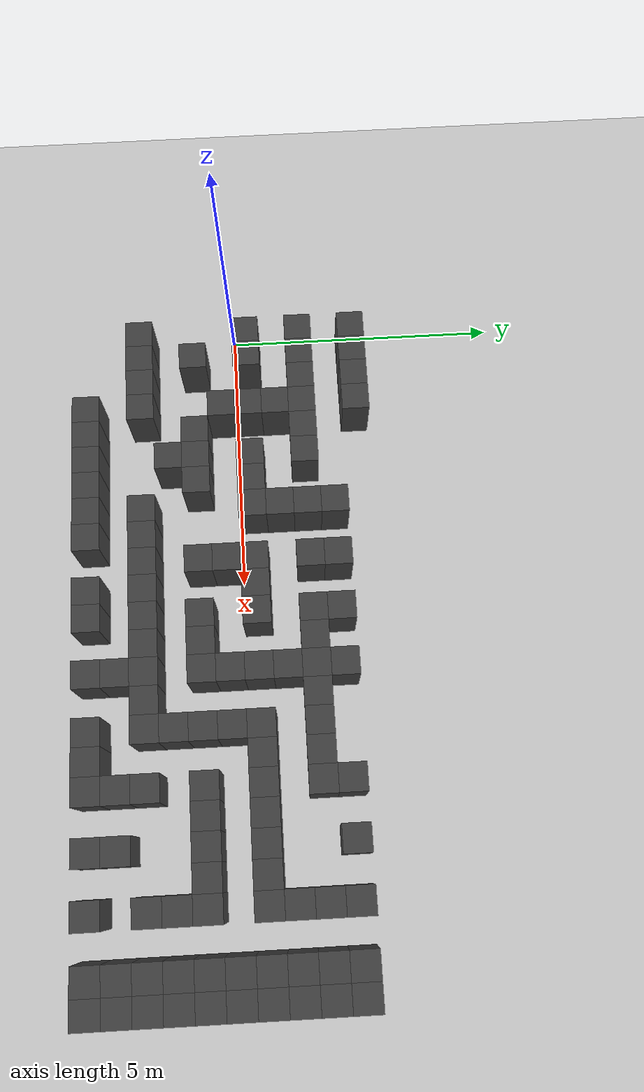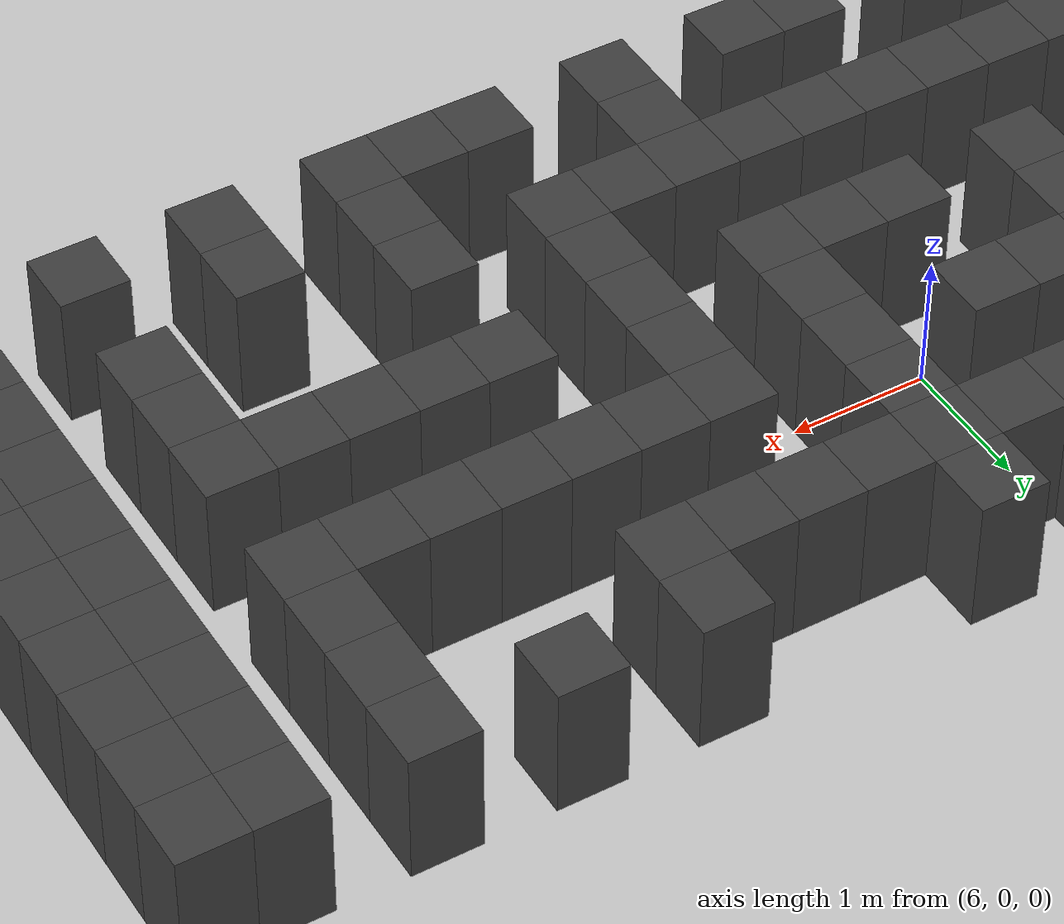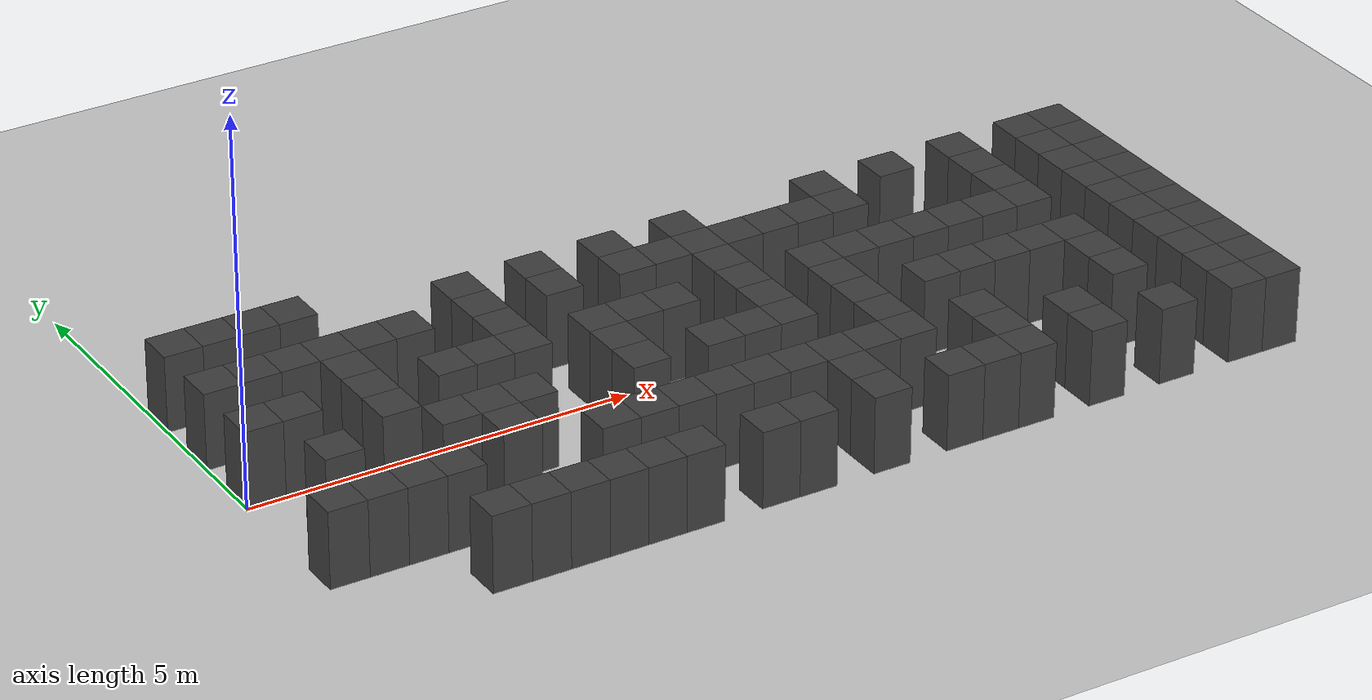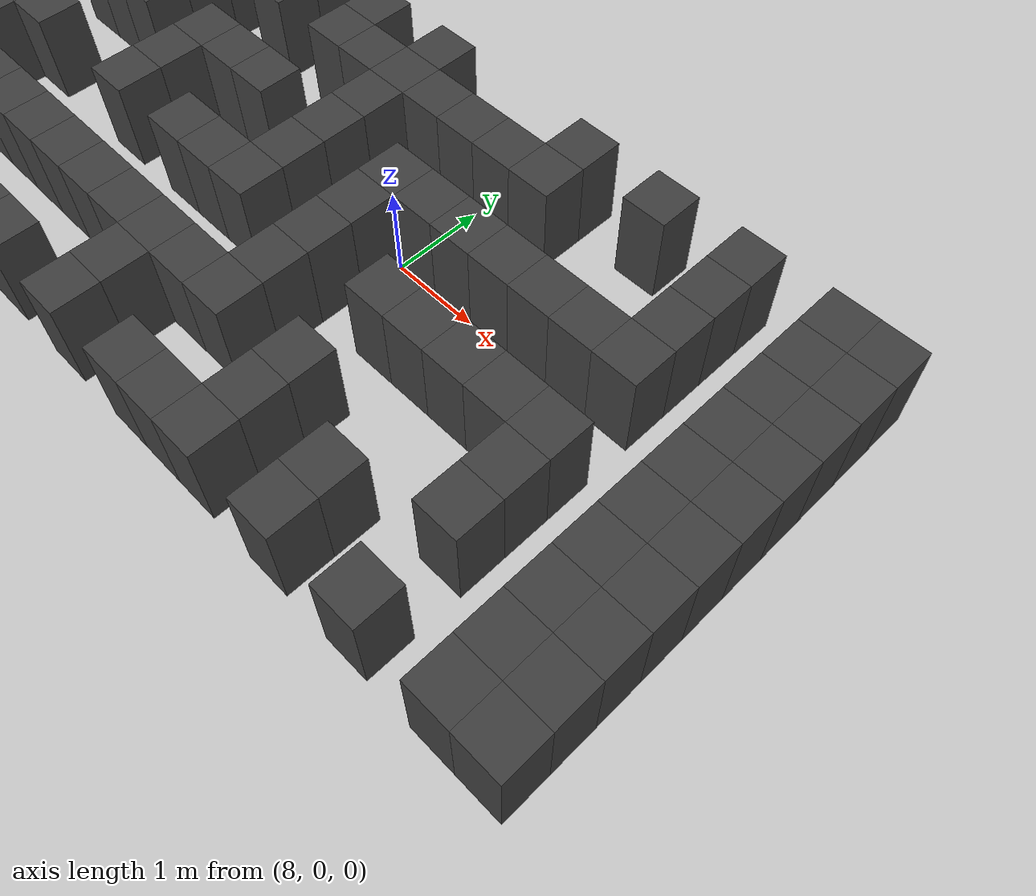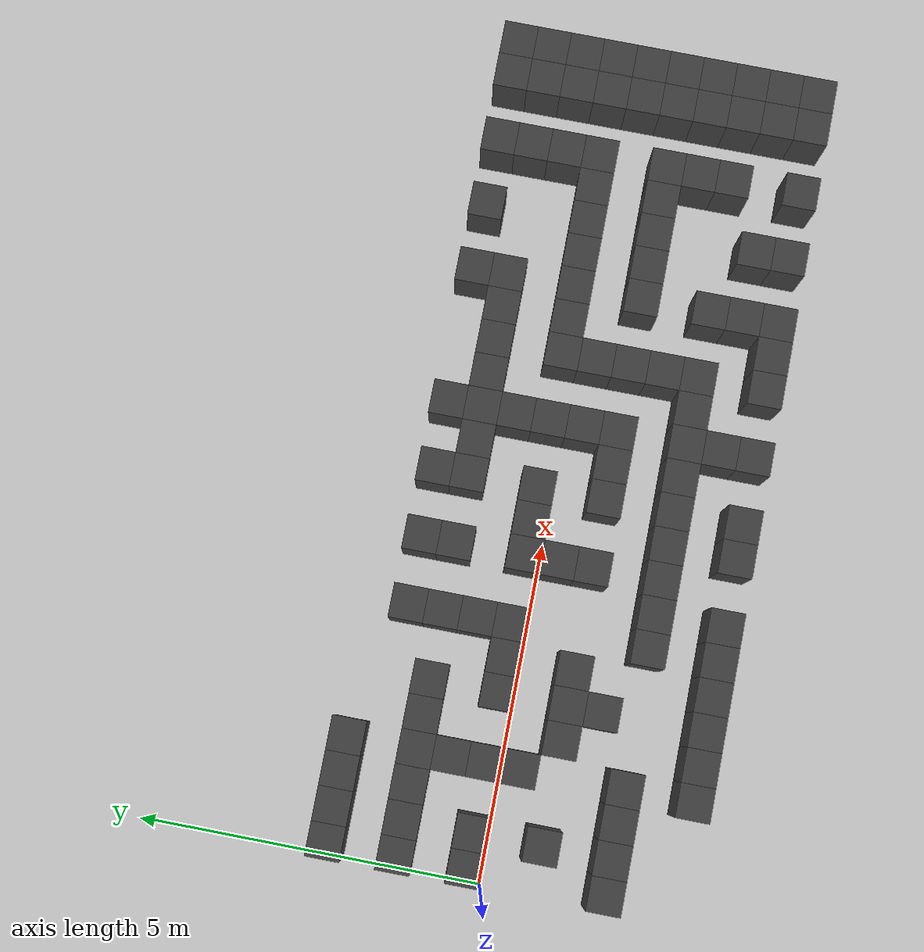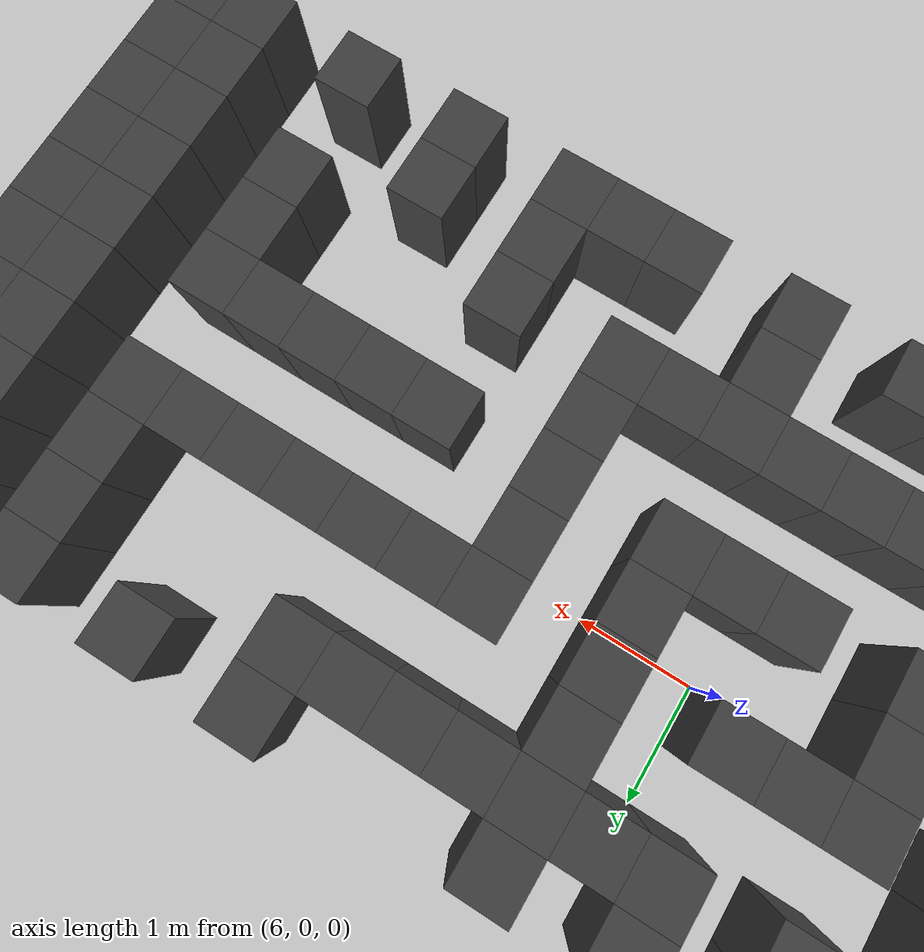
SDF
<sdf version="1.7">
 <world name="map_15293">
  <model name="ground_plane">
   <static>true</static>
   <link name="link">
    <collision name="collision">
     <geometry><plane><normal>0 0 1</normal><size>200 200</size></plane></geometry>
    </collision>
    <visual name="visual">
     <geometry><plane><normal>0 0 1</normal><size>200 200</size></plane></geometry>
     <material><ambient>0.8 0.8 0.8 1</ambient><diffuse>0.8 0.8 0.8 1</diffuse></material>
    </visual>
   </link>
  </model>
  <model name="maze_environment">
   <static>true</static>
   <link name="wall_488">
    <pose>0.250 2.250 0.500 0 0 0</pose>
    <collision name="col"><geometry><box><size>0.5 0.5 1.0</size></box></geometry></collision>
    <visual name="vis">
     <geometry><box><size>0.5 0.5 1.0</size></box></geometry>
     <material><ambient>0.15 0.15 0.15 1</ambient><diffuse>0.25 0.25 0.25 1</diffuse></material>
    </visual>
   </link>
   <link name="wall_489">
    <pose>0.750 2.250 0.500 0 0 0</pose>
    <collision name="col"><geometry><box><size>0.5 0.5 1.0</size></box></geometry></collision>
    <visual name="vis">
     <geometry><box><size>0.5 0.5 1.0</size></box></geometry>
     <material><ambient>0.15 0.15 0.15 1</ambient><diffuse>0.25 0.25 0.25 1</diffuse></material>
    </visual>
   </link>
   <link name="wall_490">
    <pose>1.250 2.250 0.500 0 0 0</pose>
    <collision name="col"><geometry><box><size>0.5 0.5 1.0</size></box></geometry></collision>
    <visual name="vis">
     <geometry><box><size>0.5 0.5 1.0</size></box></geometry>
     <material><ambient>0.15 0.15 0.15 1</ambient><diffuse>0.25 0.25 0.25 1</diffuse></material>
    </visual>
   </link>
   <link name="wall_491">
    <pose>1.750 2.250 0.500 0 0 0</pose>
    <collision name="col"><geometry><box><size>0.5 0.5 1.0</size></box></geometry></collision>
    <visual name="vis">
     <geometry><box><size>0.5 0.5 1.0</size></box></geometry>
     <material><ambient>0.15 0.15 0.15 1</ambient><diffuse>0.25 0.25 0.25 1</diffuse></material>
    </visual>
   </link>
   <link name="wall_510">
    <pose>3.750 1.750 0.500 0 0 0</pose>
    <collision name="col"><geometry><box><size>0.5 0.5 1.0</size></box></geometry></collision>
    <visual name="vis">
     <geometry><box><size>0.5 0.5 1.0</size></box></geometry>
     <material><ambient>0.15 0.15 0.15 1</ambient><diffuse>0.25 0.25 0.25 1</diffuse></material>
    </visual>
   </link>
   <link name="wall_511">
    <pose>4.750 1.750 0.500 0 0 0</pose>
    <collision name="col"><geometry><box><size>0.5 0.5 1.0</size></box></geometry></collision>
    <visual name="vis">
     <geometry><box><size>0.5 0.5 1.0</size></box></geometry>
     <material><ambient>0.15 0.15 0.15 1</ambient><diffuse>0.25 0.25 0.25 1</diffuse></material>
    </visual>
   </link>
   <link name="wall_512">
    <pose>5.750 1.750 0.500 0 0 0</pose>
    <collision name="col"><geometry><box><size>0.5 0.5 1.0</size></box></geometry></collision>
    <visual name="vis">
     <geometry><box><size>0.5 0.5 1.0</size></box></geometry>
     <material><ambient>0.15 0.15 0.15 1</ambient><diffuse>0.25 0.25 0.25 1</diffuse></material>
    </visual>
   </link>
   <link name="wall_513">
    <pose>6.750 1.750 0.500 0 0 0</pose>
    <collision name="col"><geometry><box><size>0.5 0.5 1.0</size></box></geometry></collision>
    <visual name="vis">
     <geometry><box><size>0.5 0.5 1.0</size></box></geometry>
     <material><ambient>0.15 0.15 0.15 1</ambient><diffuse>0.25 0.25 0.25 1</diffuse></material>
    </visual>
   </link>
   <link name="wall_514">
    <pose>8.750 1.750 0.500 0 0 0</pose>
    <collision name="col"><geometry><box><size>0.5 0.5 1.0</size></box></geometry></collision>
    <visual name="vis">
     <geometry><box><size>0.5 0.5 1.0</size></box></geometry>
     <material><ambient>0.15 0.15 0.15 1</ambient><diffuse>0.25 0.25 0.25 1</diffuse></material>
    </visual>
   </link>
   <link name="wall_515">
    <pose>9.750 1.750 0.500 0 0 0</pose>
    <collision name="col"><geometry><box><size>0.5 0.5 1.0</size></box></geometry></collision>
    <visual name="vis">
     <geometry><box><size>0.5 0.5 1.0</size></box></geometry>
     <material><ambient>0.15 0.15 0.15 1</ambient><diffuse>0.25 0.25 0.25 1</diffuse></material>
    </visual>
   </link>
   <link name="wall_516">
    <pose>10.750 1.750 0.500 0 0 0</pose>
    <collision name="col"><geometry><box><size>0.5 0.5 1.0</size></box></geometry></collision>
    <visual name="vis">
     <geometry><box><size>0.5 0.5 1.0</size></box></geometry>
     <material><ambient>0.15 0.15 0.15 1</ambient><diffuse>0.25 0.25 0.25 1</diffuse></material>
    </visual>
   </link>
   <link name="wall_517">
    <pose>11.750 1.750 0.500 0 0 0</pose>
    <collision name="col"><geometry><box><size>0.5 0.5 1.0</size></box></geometry></collision>
    <visual name="vis">
     <geometry><box><size>0.5 0.5 1.0</size></box></geometry>
     <material><ambient>0.15 0.15 0.15 1</ambient><diffuse>0.25 0.25 0.25 1</diffuse></material>
    </visual>
   </link>
   <link name="wall_518">
    <pose>12.250 1.750 0.500 0 0 0</pose>
    <collision name="col"><geometry><box><size>0.5 0.5 1.0</size></box></geometry></collision>
    <visual name="vis">
     <geometry><box><size>0.5 0.5 1.0</size></box></geometry>
     <material><ambient>0.15 0.15 0.15 1</ambient><diffuse>0.25 0.25 0.25 1</diffuse></material>
    </visual>
   </link>
   <link name="wall_535">
    <pose>0.250 1.250 0.500 0 0 0</pose>
    <collision name="col"><geometry><box><size>0.5 0.5 1.0</size></box></geometry></collision>
    <visual name="vis">
     <geometry><box><size>0.5 0.5 1.0</size></box></geometry>
     <material><ambient>0.15 0.15 0.15 1</ambient><diffuse>0.25 0.25 0.25 1</diffuse></material>
    </visual>
   </link>
   <link name="wall_536">
    <pose>0.750 1.250 0.500 0 0 0</pose>
    <collision name="col"><geometry><box><size>0.5 0.5 1.0</size></box></geometry></collision>
    <visual name="vis">
     <geometry><box><size>0.5 0.5 1.0</size></box></geometry>
     <material><ambient>0.15 0.15 0.15 1</ambient><diffuse>0.25 0.25 0.25 1</diffuse></material>
    </visual>
   </link>
   <link name="wall_537">
    <pose>1.250 1.250 0.500 0 0 0</pose>
    <collision name="col"><geometry><box><size>0.5 0.5 1.0</size></box></geometry></collision>
    <visual name="vis">
     <geometry><box><size>0.5 0.5 1.0</size></box></geometry>
     <material><ambient>0.15 0.15 0.15 1</ambient><diffuse>0.25 0.25 0.25 1</diffuse></material>
    </visual>
   </link>
   <link name="wall_538">
    <pose>1.750 1.250 0.500 0 0 0</pose>
    <collision name="col"><geometry><box><size>0.5 0.5 1.0</size></box></geometry></collision>
    <visual name="vis">
     <geometry><box><size>0.5 0.5 1.0</size></box></geometry>
     <material><ambient>0.15 0.15 0.15 1</ambient><diffuse>0.25 0.25 0.25 1</diffuse></material>
    </visual>
   </link>
   <link name="wall_539">
    <pose>2.250 1.250 0.500 0 0 0</pose>
    <collision name="col"><geometry><box><size>0.5 0.5 1.0</size></box></geometry></collision>
    <visual name="vis">
     <geometry><box><size>0.5 0.5 1.0</size></box></geometry>
     <material><ambient>0.15 0.15 0.15 1</ambient><diffuse>0.25 0.25 0.25 1</diffuse></material>
    </visual>
   </link>
   <link name="wall_540">
    <pose>2.750 1.250 0.500 0 0 0</pose>
    <collision name="col"><geometry><box><size>0.5 0.5 1.0</size></box></geometry></collision>
    <visual name="vis">
     <geometry><box><size>0.5 0.5 1.0</size></box></geometry>
     <material><ambient>0.15 0.15 0.15 1</ambient><diffuse>0.25 0.25 0.25 1</diffuse></material>
    </visual>
   </link>
   <link name="wall_541">
    <pose>3.750 1.250 0.500 0 0 0</pose>
    <collision name="col"><geometry><box><size>0.5 0.5 1.0</size></box></geometry></collision>
    <visual name="vis">
     <geometry><box><size>0.5 0.5 1.0</size></box></geometry>
     <material><ambient>0.15 0.15 0.15 1</ambient><diffuse>0.25 0.25 0.25 1</diffuse></material>
    </visual>
   </link>
   <link name="wall_542">
    <pose>4.750 1.250 0.500 0 0 0</pose>
    <collision name="col"><geometry><box><size>0.5 0.5 1.0</size></box></geometry></collision>
    <visual name="vis">
     <geometry><box><size>0.5 0.5 1.0</size></box></geometry>
     <material><ambient>0.15 0.15 0.15 1</ambient><diffuse>0.25 0.25 0.25 1</diffuse></material>
    </visual>
   </link>
   <link name="wall_543">
    <pose>5.750 1.250 0.500 0 0 0</pose>
    <collision name="col"><geometry><box><size>0.5 0.5 1.0</size></box></geometry></collision>
    <visual name="vis">
     <geometry><box><size>0.5 0.5 1.0</size></box></geometry>
     <material><ambient>0.15 0.15 0.15 1</ambient><diffuse>0.25 0.25 0.25 1</diffuse></material>
    </visual>
   </link>
   <link name="wall_544">
    <pose>6.250 1.250 0.500 0 0 0</pose>
    <collision name="col"><geometry><box><size>0.5 0.5 1.0</size></box></geometry></collision>
    <visual name="vis">
     <geometry><box><size>0.5 0.5 1.0</size></box></geometry>
     <material><ambient>0.15 0.15 0.15 1</ambient><diffuse>0.25 0.25 0.25 1</diffuse></material>
    </visual>
   </link>
   <link name="wall_545">
    <pose>6.750 1.250 0.500 0 0 0</pose>
    <collision name="col"><geometry><box><size>0.5 0.5 1.0</size></box></geometry></collision>
    <visual name="vis">
     <geometry><box><size>0.5 0.5 1.0</size></box></geometry>
     <material><ambient>0.15 0.15 0.15 1</ambient><diffuse>0.25 0.25 0.25 1</diffuse></material>
    </visual>
   </link>
   <link name="wall_546">
    <pose>7.250 1.250 0.500 0 0 0</pose>
    <collision name="col"><geometry><box><size>0.5 0.5 1.0</size></box></geometry></collision>
    <visual name="vis">
     <geometry><box><size>0.5 0.5 1.0</size></box></geometry>
     <material><ambient>0.15 0.15 0.15 1</ambient><diffuse>0.25 0.25 0.25 1</diffuse></material>
    </visual>
   </link>
   <link name="wall_547">
    <pose>7.750 1.250 0.500 0 0 0</pose>
    <collision name="col"><geometry><box><size>0.5 0.5 1.0</size></box></geometry></collision>
    <visual name="vis">
     <geometry><box><size>0.5 0.5 1.0</size></box></geometry>
     <material><ambient>0.15 0.15 0.15 1</ambient><diffuse>0.25 0.25 0.25 1</diffuse></material>
    </visual>
   </link>
   <link name="wall_548">
    <pose>8.250 1.250 0.500 0 0 0</pose>
    <collision name="col"><geometry><box><size>0.5 0.5 1.0</size></box></geometry></collision>
    <visual name="vis">
     <geometry><box><size>0.5 0.5 1.0</size></box></geometry>
     <material><ambient>0.15 0.15 0.15 1</ambient><diffuse>0.25 0.25 0.25 1</diffuse></material>
    </visual>
   </link>
   <link name="wall_549">
    <pose>8.750 1.250 0.500 0 0 0</pose>
    <collision name="col"><geometry><box><size>0.5 0.5 1.0</size></box></geometry></collision>
    <visual name="vis">
     <geometry><box><size>0.5 0.5 1.0</size></box></geometry>
     <material><ambient>0.15 0.15 0.15 1</ambient><diffuse>0.25 0.25 0.25 1</diffuse></material>
    </visual>
   </link>
   <link name="wall_550">
    <pose>10.750 1.250 0.500 0 0 0</pose>
    <collision name="col"><geometry><box><size>0.5 0.5 1.0</size></box></geometry></collision>
    <visual name="vis">
     <geometry><box><size>0.5 0.5 1.0</size></box></geometry>
     <material><ambient>0.15 0.15 0.15 1</ambient><diffuse>0.25 0.25 0.25 1</diffuse></material>
    </visual>
   </link>
   <link name="wall_551">
    <pose>11.750 1.250 0.500 0 0 0</pose>
    <collision name="col"><geometry><box><size>0.5 0.5 1.0</size></box></geometry></collision>
    <visual name="vis">
     <geometry><box><size>0.5 0.5 1.0</size></box></geometry>
     <material><ambient>0.15 0.15 0.15 1</ambient><diffuse>0.25 0.25 0.25 1</diffuse></material>
    </visual>
   </link>
   <link name="wall_552">
    <pose>12.250 1.250 0.500 0 0 0</pose>
    <collision name="col"><geometry><box><size>0.5 0.5 1.0</size></box></geometry></collision>
    <visual name="vis">
     <geometry><box><size>0.5 0.5 1.0</size></box></geometry>
     <material><ambient>0.15 0.15 0.15 1</ambient><diffuse>0.25 0.25 0.25 1</diffuse></material>
    </visual>
   </link>
   <link name="wall_558">
    <pose>1.750 0.750 0.500 0 0 0</pose>
    <collision name="col"><geometry><box><size>0.5 0.5 1.0</size></box></geometry></collision>
    <visual name="vis">
     <geometry><box><size>0.5 0.5 1.0</size></box></geometry>
     <material><ambient>0.15 0.15 0.15 1</ambient><diffuse>0.25 0.25 0.25 1</diffuse></material>
    </visual>
   </link>
   <link name="wall_559">
    <pose>3.750 0.750 0.500 0 0 0</pose>
    <collision name="col"><geometry><box><size>0.5 0.5 1.0</size></box></geometry></collision>
    <visual name="vis">
     <geometry><box><size>0.5 0.5 1.0</size></box></geometry>
     <material><ambient>0.15 0.15 0.15 1</ambient><diffuse>0.25 0.25 0.25 1</diffuse></material>
    </visual>
   </link>
   <link name="wall_560">
    <pose>6.750 0.750 0.500 0 0 0</pose>
    <collision name="col"><geometry><box><size>0.5 0.5 1.0</size></box></geometry></collision>
    <visual name="vis">
     <geometry><box><size>0.5 0.5 1.0</size></box></geometry>
     <material><ambient>0.15 0.15 0.15 1</ambient><diffuse>0.25 0.25 0.25 1</diffuse></material>
    </visual>
   </link>
   <link name="wall_561">
    <pose>10.750 0.750 0.500 0 0 0</pose>
    <collision name="col"><geometry><box><size>0.5 0.5 1.0</size></box></geometry></collision>
    <visual name="vis">
     <geometry><box><size>0.5 0.5 1.0</size></box></geometry>
     <material><ambient>0.15 0.15 0.15 1</ambient><diffuse>0.25 0.25 0.25 1</diffuse></material>
    </visual>
   </link>
   <link name="wall_562">
    <pose>11.750 0.750 0.500 0 0 0</pose>
    <collision name="col"><geometry><box><size>0.5 0.5 1.0</size></box></geometry></collision>
    <visual name="vis">
     <geometry><box><size>0.5 0.5 1.0</size></box></geometry>
     <material><ambient>0.15 0.15 0.15 1</ambient><diffuse>0.25 0.25 0.25 1</diffuse></material>
    </visual>
   </link>
   <link name="wall_563">
    <pose>12.250 0.750 0.500 0 0 0</pose>
    <collision name="col"><geometry><box><size>0.5 0.5 1.0</size></box></geometry></collision>
    <visual name="vis">
     <geometry><box><size>0.5 0.5 1.0</size></box></geometry>
     <material><ambient>0.15 0.15 0.15 1</ambient><diffuse>0.25 0.25 0.25 1</diffuse></material>
    </visual>
   </link>
   <link name="wall_579">
    <pose>0.250 0.250 0.500 0 0 0</pose>
    <collision name="col"><geometry><box><size>0.5 0.5 1.0</size></box></geometry></collision>
    <visual name="vis">
     <geometry><box><size>0.5 0.5 1.0</size></box></geometry>
     <material><ambient>0.15 0.15 0.15 1</ambient><diffuse>0.25 0.25 0.25 1</diffuse></material>
    </visual>
   </link>
   <link name="wall_580">
    <pose>0.750 0.250 0.500 0 0 0</pose>
    <collision name="col"><geometry><box><size>0.5 0.5 1.0</size></box></geometry></collision>
    <visual name="vis">
     <geometry><box><size>0.5 0.5 1.0</size></box></geometry>
     <material><ambient>0.15 0.15 0.15 1</ambient><diffuse>0.25 0.25 0.25 1</diffuse></material>
    </visual>
   </link>
   <link name="wall_581">
    <pose>1.750 0.250 0.500 0 0 0</pose>
    <collision name="col"><geometry><box><size>0.5 0.5 1.0</size></box></geometry></collision>
    <visual name="vis">
     <geometry><box><size>0.5 0.5 1.0</size></box></geometry>
     <material><ambient>0.15 0.15 0.15 1</ambient><diffuse>0.25 0.25 0.25 1</diffuse></material>
    </visual>
   </link>
   <link name="wall_582">
    <pose>2.750 0.250 0.500 0 0 0</pose>
    <collision name="col"><geometry><box><size>0.5 0.5 1.0</size></box></geometry></collision>
    <visual name="vis">
     <geometry><box><size>0.5 0.5 1.0</size></box></geometry>
     <material><ambient>0.15 0.15 0.15 1</ambient><diffuse>0.25 0.25 0.25 1</diffuse></material>
    </visual>
   </link>
   <link name="wall_583">
    <pose>3.250 0.250 0.500 0 0 0</pose>
    <collision name="col"><geometry><box><size>0.5 0.5 1.0</size></box></geometry></collision>
    <visual name="vis">
     <geometry><box><size>0.5 0.5 1.0</size></box></geometry>
     <material><ambient>0.15 0.15 0.15 1</ambient><diffuse>0.25 0.25 0.25 1</diffuse></material>
    </visual>
   </link>
   <link name="wall_584">
    <pose>3.750 0.250 0.500 0 0 0</pose>
    <collision name="col"><geometry><box><size>0.5 0.5 1.0</size></box></geometry></collision>
    <visual name="vis">
     <geometry><box><size>0.5 0.5 1.0</size></box></geometry>
     <material><ambient>0.15 0.15 0.15 1</ambient><diffuse>0.25 0.25 0.25 1</diffuse></material>
    </visual>
   </link>
   <link name="wall_585">
    <pose>4.750 0.250 0.500 0 0 0</pose>
    <collision name="col"><geometry><box><size>0.5 0.5 1.0</size></box></geometry></collision>
    <visual name="vis">
     <geometry><box><size>0.5 0.5 1.0</size></box></geometry>
     <material><ambient>0.15 0.15 0.15 1</ambient><diffuse>0.25 0.25 0.25 1</diffuse></material>
    </visual>
   </link>
   <link name="wall_586">
    <pose>5.250 0.250 0.500 0 0 0</pose>
    <collision name="col"><geometry><box><size>0.5 0.5 1.0</size></box></geometry></collision>
    <visual name="vis">
     <geometry><box><size>0.5 0.5 1.0</size></box></geometry>
     <material><ambient>0.15 0.15 0.15 1</ambient><diffuse>0.25 0.25 0.25 1</diffuse></material>
    </visual>
   </link>
   <link name="wall_587">
    <pose>5.750 0.250 0.500 0 0 0</pose>
    <collision name="col"><geometry><box><size>0.5 0.5 1.0</size></box></geometry></collision>
    <visual name="vis">
     <geometry><box><size>0.5 0.5 1.0</size></box></geometry>
     <material><ambient>0.15 0.15 0.15 1</ambient><diffuse>0.25 0.25 0.25 1</diffuse></material>
    </visual>
   </link>
   <link name="wall_588">
    <pose>6.750 0.250 0.500 0 0 0</pose>
    <collision name="col"><geometry><box><size>0.5 0.5 1.0</size></box></geometry></collision>
    <visual name="vis">
     <geometry><box><size>0.5 0.5 1.0</size></box></geometry>
     <material><ambient>0.15 0.15 0.15 1</ambient><diffuse>0.25 0.25 0.25 1</diffuse></material>
    </visual>
   </link>
   <link name="wall_589">
    <pose>7.750 0.250 0.500 0 0 0</pose>
    <collision name="col"><geometry><box><size>0.5 0.5 1.0</size></box></geometry></collision>
    <visual name="vis">
     <geometry><box><size>0.5 0.5 1.0</size></box></geometry>
     <material><ambient>0.15 0.15 0.15 1</ambient><diffuse>0.25 0.25 0.25 1</diffuse></material>
    </visual>
   </link>
   <link name="wall_590">
    <pose>8.250 0.250 0.500 0 0 0</pose>
    <collision name="col"><geometry><box><size>0.5 0.5 1.0</size></box></geometry></collision>
    <visual name="vis">
     <geometry><box><size>0.5 0.5 1.0</size></box></geometry>
     <material><ambient>0.15 0.15 0.15 1</ambient><diffuse>0.25 0.25 0.25 1</diffuse></material>
    </visual>
   </link>
   <link name="wall_591">
    <pose>8.750 0.250 0.500 0 0 0</pose>
    <collision name="col"><geometry><box><size>0.5 0.5 1.0</size></box></geometry></collision>
    <visual name="vis">
     <geometry><box><size>0.5 0.5 1.0</size></box></geometry>
     <material><ambient>0.15 0.15 0.15 1</ambient><diffuse>0.25 0.25 0.25 1</diffuse></material>
    </visual>
   </link>
   <link name="wall_592">
    <pose>9.250 0.250 0.500 0 0 0</pose>
    <collision name="col"><geometry><box><size>0.5 0.5 1.0</size></box></geometry></collision>
    <visual name="vis">
     <geometry><box><size>0.5 0.5 1.0</size></box></geometry>
     <material><ambient>0.15 0.15 0.15 1</ambient><diffuse>0.25 0.25 0.25 1</diffuse></material>
    </visual>
   </link>
   <link name="wall_593">
    <pose>9.750 0.250 0.500 0 0 0</pose>
    <collision name="col"><geometry><box><size>0.5 0.5 1.0</size></box></geometry></collision>
    <visual name="vis">
     <geometry><box><size>0.5 0.5 1.0</size></box></geometry>
     <material><ambient>0.15 0.15 0.15 1</ambient><diffuse>0.25 0.25 0.25 1</diffuse></material>
    </visual>
   </link>
   <link name="wall_594">
    <pose>10.250 0.250 0.500 0 0 0</pose>
    <collision name="col"><geometry><box><size>0.5 0.5 1.0</size></box></geometry></collision>
    <visual name="vis">
     <geometry><box><size>0.5 0.5 1.0</size></box></geometry>
     <material><ambient>0.15 0.15 0.15 1</ambient><diffuse>0.25 0.25 0.25 1</diffuse></material>
    </visual>
   </link>
   <link name="wall_595">
    <pose>10.750 0.250 0.500 0 0 0</pose>
    <collision name="col"><geometry><box><size>0.5 0.5 1.0</size></box></geometry></collision>
    <visual name="vis">
     <geometry><box><size>0.5 0.5 1.0</size></box></geometry>
     <material><ambient>0.15 0.15 0.15 1</ambient><diffuse>0.25 0.25 0.25 1</diffuse></material>
    </visual>
   </link>
   <link name="wall_596">
    <pose>11.750 0.250 0.500 0 0 0</pose>
    <collision name="col"><geometry><box><size>0.5 0.5 1.0</size></box></geometry></collision>
    <visual name="vis">
     <geometry><box><size>0.5 0.5 1.0</size></box></geometry>
     <material><ambient>0.15 0.15 0.15 1</ambient><diffuse>0.25 0.25 0.25 1</diffuse></material>
    </visual>
   </link>
   <link name="wall_597">
    <pose>12.250 0.250 0.500 0 0 0</pose>
    <collision name="col"><geometry><box><size>0.5 0.5 1.0</size></box></geometry></collision>
    <visual name="vis">
     <geometry><box><size>0.5 0.5 1.0</size></box></geometry>
     <material><ambient>0.15 0.15 0.15 1</ambient><diffuse>0.25 0.25 0.25 1</diffuse></material>
    </visual>
   </link>
   <link name="wall_607">
    <pose>1.750 -0.250 0.500 0 0 0</pose>
    <collision name="col"><geometry><box><size>0.5 0.5 1.0</size></box></geometry></collision>
    <visual name="vis">
     <geometry><box><size>0.5 0.5 1.0</size></box></geometry>
     <material><ambient>0.15 0.15 0.15 1</ambient><diffuse>0.25 0.25 0.25 1</diffuse></material>
    </visual>
   </link>
   <link name="wall_608">
    <pose>4.750 -0.250 0.500 0 0 0</pose>
    <collision name="col"><geometry><box><size>0.5 0.5 1.0</size></box></geometry></collision>
    <visual name="vis">
     <geometry><box><size>0.5 0.5 1.0</size></box></geometry>
     <material><ambient>0.15 0.15 0.15 1</ambient><diffuse>0.25 0.25 0.25 1</diffuse></material>
    </visual>
   </link>
   <link name="wall_609">
    <pose>6.750 -0.250 0.500 0 0 0</pose>
    <collision name="col"><geometry><box><size>0.5 0.5 1.0</size></box></geometry></collision>
    <visual name="vis">
     <geometry><box><size>0.5 0.5 1.0</size></box></geometry>
     <material><ambient>0.15 0.15 0.15 1</ambient><diffuse>0.25 0.25 0.25 1</diffuse></material>
    </visual>
   </link>
   <link name="wall_610">
    <pose>7.750 -0.250 0.500 0 0 0</pose>
    <collision name="col"><geometry><box><size>0.5 0.5 1.0</size></box></geometry></collision>
    <visual name="vis">
     <geometry><box><size>0.5 0.5 1.0</size></box></geometry>
     <material><ambient>0.15 0.15 0.15 1</ambient><diffuse>0.25 0.25 0.25 1</diffuse></material>
    </visual>
   </link>
   <link name="wall_611">
    <pose>11.750 -0.250 0.500 0 0 0</pose>
    <collision name="col"><geometry><box><size>0.5 0.5 1.0</size></box></geometry></collision>
    <visual name="vis">
     <geometry><box><size>0.5 0.5 1.0</size></box></geometry>
     <material><ambient>0.15 0.15 0.15 1</ambient><diffuse>0.25 0.25 0.25 1</diffuse></material>
    </visual>
   </link>
   <link name="wall_612">
    <pose>12.250 -0.250 0.500 0 0 0</pose>
    <collision name="col"><geometry><box><size>0.5 0.5 1.0</size></box></geometry></collision>
    <visual name="vis">
     <geometry><box><size>0.5 0.5 1.0</size></box></geometry>
     <material><ambient>0.15 0.15 0.15 1</ambient><diffuse>0.25 0.25 0.25 1</diffuse></material>
    </visual>
   </link>
   <link name="wall_631">
    <pose>0.750 -0.750 0.500 0 0 0</pose>
    <collision name="col"><geometry><box><size>0.5 0.5 1.0</size></box></geometry></collision>
    <visual name="vis">
     <geometry><box><size>0.5 0.5 1.0</size></box></geometry>
     <material><ambient>0.15 0.15 0.15 1</ambient><diffuse>0.25 0.25 0.25 1</diffuse></material>
    </visual>
   </link>
   <link name="wall_632">
    <pose>2.250 -0.750 0.500 0 0 0</pose>
    <collision name="col"><geometry><box><size>0.5 0.5 1.0</size></box></geometry></collision>
    <visual name="vis">
     <geometry><box><size>0.5 0.5 1.0</size></box></geometry>
     <material><ambient>0.15 0.15 0.15 1</ambient><diffuse>0.25 0.25 0.25 1</diffuse></material>
    </visual>
   </link>
   <link name="wall_633">
    <pose>2.750 -0.750 0.500 0 0 0</pose>
    <collision name="col"><geometry><box><size>0.5 0.5 1.0</size></box></geometry></collision>
    <visual name="vis">
     <geometry><box><size>0.5 0.5 1.0</size></box></geometry>
     <material><ambient>0.15 0.15 0.15 1</ambient><diffuse>0.25 0.25 0.25 1</diffuse></material>
    </visual>
   </link>
   <link name="wall_634">
    <pose>3.250 -0.750 0.500 0 0 0</pose>
    <collision name="col"><geometry><box><size>0.5 0.5 1.0</size></box></geometry></collision>
    <visual name="vis">
     <geometry><box><size>0.5 0.5 1.0</size></box></geometry>
     <material><ambient>0.15 0.15 0.15 1</ambient><diffuse>0.25 0.25 0.25 1</diffuse></material>
    </visual>
   </link>
   <link name="wall_635">
    <pose>4.750 -0.750 0.500 0 0 0</pose>
    <collision name="col"><geometry><box><size>0.5 0.5 1.0</size></box></geometry></collision>
    <visual name="vis">
     <geometry><box><size>0.5 0.5 1.0</size></box></geometry>
     <material><ambient>0.15 0.15 0.15 1</ambient><diffuse>0.25 0.25 0.25 1</diffuse></material>
    </visual>
   </link>
   <link name="wall_636">
    <pose>5.750 -0.750 0.500 0 0 0</pose>
    <collision name="col"><geometry><box><size>0.5 0.5 1.0</size></box></geometry></collision>
    <visual name="vis">
     <geometry><box><size>0.5 0.5 1.0</size></box></geometry>
     <material><ambient>0.15 0.15 0.15 1</ambient><diffuse>0.25 0.25 0.25 1</diffuse></material>
    </visual>
   </link>
   <link name="wall_637">
    <pose>6.250 -0.750 0.500 0 0 0</pose>
    <collision name="col"><geometry><box><size>0.5 0.5 1.0</size></box></geometry></collision>
    <visual name="vis">
     <geometry><box><size>0.5 0.5 1.0</size></box></geometry>
     <material><ambient>0.15 0.15 0.15 1</ambient><diffuse>0.25 0.25 0.25 1</diffuse></material>
    </visual>
   </link>
   <link name="wall_638">
    <pose>6.750 -0.750 0.500 0 0 0</pose>
    <collision name="col"><geometry><box><size>0.5 0.5 1.0</size></box></geometry></collision>
    <visual name="vis">
     <geometry><box><size>0.5 0.5 1.0</size></box></geometry>
     <material><ambient>0.15 0.15 0.15 1</ambient><diffuse>0.25 0.25 0.25 1</diffuse></material>
    </visual>
   </link>
   <link name="wall_639">
    <pose>7.750 -0.750 0.500 0 0 0</pose>
    <collision name="col"><geometry><box><size>0.5 0.5 1.0</size></box></geometry></collision>
    <visual name="vis">
     <geometry><box><size>0.5 0.5 1.0</size></box></geometry>
     <material><ambient>0.15 0.15 0.15 1</ambient><diffuse>0.25 0.25 0.25 1</diffuse></material>
    </visual>
   </link>
   <link name="wall_640">
    <pose>8.750 -0.750 0.500 0 0 0</pose>
    <collision name="col"><geometry><box><size>0.5 0.5 1.0</size></box></geometry></collision>
    <visual name="vis">
     <geometry><box><size>0.5 0.5 1.0</size></box></geometry>
     <material><ambient>0.15 0.15 0.15 1</ambient><diffuse>0.25 0.25 0.25 1</diffuse></material>
    </visual>
   </link>
   <link name="wall_641">
    <pose>9.250 -0.750 0.500 0 0 0</pose>
    <collision name="col"><geometry><box><size>0.5 0.5 1.0</size></box></geometry></collision>
    <visual name="vis">
     <geometry><box><size>0.5 0.5 1.0</size></box></geometry>
     <material><ambient>0.15 0.15 0.15 1</ambient><diffuse>0.25 0.25 0.25 1</diffuse></material>
    </visual>
   </link>
   <link name="wall_642">
    <pose>9.750 -0.750 0.500 0 0 0</pose>
    <collision name="col"><geometry><box><size>0.5 0.5 1.0</size></box></geometry></collision>
    <visual name="vis">
     <geometry><box><size>0.5 0.5 1.0</size></box></geometry>
     <material><ambient>0.15 0.15 0.15 1</ambient><diffuse>0.25 0.25 0.25 1</diffuse></material>
    </visual>
   </link>
   <link name="wall_643">
    <pose>10.250 -0.750 0.500 0 0 0</pose>
    <collision name="col"><geometry><box><size>0.5 0.5 1.0</size></box></geometry></collision>
    <visual name="vis">
     <geometry><box><size>0.5 0.5 1.0</size></box></geometry>
     <material><ambient>0.15 0.15 0.15 1</ambient><diffuse>0.25 0.25 0.25 1</diffuse></material>
    </visual>
   </link>
   <link name="wall_644">
    <pose>10.750 -0.750 0.500 0 0 0</pose>
    <collision name="col"><geometry><box><size>0.5 0.5 1.0</size></box></geometry></collision>
    <visual name="vis">
     <geometry><box><size>0.5 0.5 1.0</size></box></geometry>
     <material><ambient>0.15 0.15 0.15 1</ambient><diffuse>0.25 0.25 0.25 1</diffuse></material>
    </visual>
   </link>
   <link name="wall_645">
    <pose>11.750 -0.750 0.500 0 0 0</pose>
    <collision name="col"><geometry><box><size>0.5 0.5 1.0</size></box></geometry></collision>
    <visual name="vis">
     <geometry><box><size>0.5 0.5 1.0</size></box></geometry>
     <material><ambient>0.15 0.15 0.15 1</ambient><diffuse>0.25 0.25 0.25 1</diffuse></material>
    </visual>
   </link>
   <link name="wall_646">
    <pose>12.250 -0.750 0.500 0 0 0</pose>
    <collision name="col"><geometry><box><size>0.5 0.5 1.0</size></box></geometry></collision>
    <visual name="vis">
     <geometry><box><size>0.5 0.5 1.0</size></box></geometry>
     <material><ambient>0.15 0.15 0.15 1</ambient><diffuse>0.25 0.25 0.25 1</diffuse></material>
    </visual>
   </link>
   <link name="wall_651">
    <pose>2.750 -1.250 0.500 0 0 0</pose>
    <collision name="col"><geometry><box><size>0.5 0.5 1.0</size></box></geometry></collision>
    <visual name="vis">
     <geometry><box><size>0.5 0.5 1.0</size></box></geometry>
     <material><ambient>0.15 0.15 0.15 1</ambient><diffuse>0.25 0.25 0.25 1</diffuse></material>
    </visual>
   </link>
   <link name="wall_652">
    <pose>7.750 -1.250 0.500 0 0 0</pose>
    <collision name="col"><geometry><box><size>0.5 0.5 1.0</size></box></geometry></collision>
    <visual name="vis">
     <geometry><box><size>0.5 0.5 1.0</size></box></geometry>
     <material><ambient>0.15 0.15 0.15 1</ambient><diffuse>0.25 0.25 0.25 1</diffuse></material>
    </visual>
   </link>
   <link name="wall_653">
    <pose>10.750 -1.250 0.500 0 0 0</pose>
    <collision name="col"><geometry><box><size>0.5 0.5 1.0</size></box></geometry></collision>
    <visual name="vis">
     <geometry><box><size>0.5 0.5 1.0</size></box></geometry>
     <material><ambient>0.15 0.15 0.15 1</ambient><diffuse>0.25 0.25 0.25 1</diffuse></material>
    </visual>
   </link>
   <link name="wall_654">
    <pose>11.750 -1.250 0.500 0 0 0</pose>
    <collision name="col"><geometry><box><size>0.5 0.5 1.0</size></box></geometry></collision>
    <visual name="vis">
     <geometry><box><size>0.5 0.5 1.0</size></box></geometry>
     <material><ambient>0.15 0.15 0.15 1</ambient><diffuse>0.25 0.25 0.25 1</diffuse></material>
    </visual>
   </link>
   <link name="wall_655">
    <pose>12.250 -1.250 0.500 0 0 0</pose>
    <collision name="col"><geometry><box><size>0.5 0.5 1.0</size></box></geometry></collision>
    <visual name="vis">
     <geometry><box><size>0.5 0.5 1.0</size></box></geometry>
     <material><ambient>0.15 0.15 0.15 1</ambient><diffuse>0.25 0.25 0.25 1</diffuse></material>
    </visual>
   </link>
   <link name="wall_676">
    <pose>0.250 -1.750 0.500 0 0 0</pose>
    <collision name="col"><geometry><box><size>0.5 0.5 1.0</size></box></geometry></collision>
    <visual name="vis">
     <geometry><box><size>0.5 0.5 1.0</size></box></geometry>
     <material><ambient>0.15 0.15 0.15 1</ambient><diffuse>0.25 0.25 0.25 1</diffuse></material>
    </visual>
   </link>
   <link name="wall_677">
    <pose>0.750 -1.750 0.500 0 0 0</pose>
    <collision name="col"><geometry><box><size>0.5 0.5 1.0</size></box></geometry></collision>
    <visual name="vis">
     <geometry><box><size>0.5 0.5 1.0</size></box></geometry>
     <material><ambient>0.15 0.15 0.15 1</ambient><diffuse>0.25 0.25 0.25 1</diffuse></material>
    </visual>
   </link>
   <link name="wall_678">
    <pose>1.250 -1.750 0.500 0 0 0</pose>
    <collision name="col"><geometry><box><size>0.5 0.5 1.0</size></box></geometry></collision>
    <visual name="vis">
     <geometry><box><size>0.5 0.5 1.0</size></box></geometry>
     <material><ambient>0.15 0.15 0.15 1</ambient><diffuse>0.25 0.25 0.25 1</diffuse></material>
    </visual>
   </link>
   <link name="wall_679">
    <pose>1.750 -1.750 0.500 0 0 0</pose>
    <collision name="col"><geometry><box><size>0.5 0.5 1.0</size></box></geometry></collision>
    <visual name="vis">
     <geometry><box><size>0.5 0.5 1.0</size></box></geometry>
     <material><ambient>0.15 0.15 0.15 1</ambient><diffuse>0.25 0.25 0.25 1</diffuse></material>
    </visual>
   </link>
   <link name="wall_680">
    <pose>3.750 -1.750 0.500 0 0 0</pose>
    <collision name="col"><geometry><box><size>0.5 0.5 1.0</size></box></geometry></collision>
    <visual name="vis">
     <geometry><box><size>0.5 0.5 1.0</size></box></geometry>
     <material><ambient>0.15 0.15 0.15 1</ambient><diffuse>0.25 0.25 0.25 1</diffuse></material>
    </visual>
   </link>
   <link name="wall_681">
    <pose>4.250 -1.750 0.500 0 0 0</pose>
    <collision name="col"><geometry><box><size>0.5 0.5 1.0</size></box></geometry></collision>
    <visual name="vis">
     <geometry><box><size>0.5 0.5 1.0</size></box></geometry>
     <material><ambient>0.15 0.15 0.15 1</ambient><diffuse>0.25 0.25 0.25 1</diffuse></material>
    </visual>
   </link>
   <link name="wall_682">
    <pose>4.750 -1.750 0.500 0 0 0</pose>
    <collision name="col"><geometry><box><size>0.5 0.5 1.0</size></box></geometry></collision>
    <visual name="vis">
     <geometry><box><size>0.5 0.5 1.0</size></box></geometry>
     <material><ambient>0.15 0.15 0.15 1</ambient><diffuse>0.25 0.25 0.25 1</diffuse></material>
    </visual>
   </link>
   <link name="wall_683">
    <pose>5.250 -1.750 0.500 0 0 0</pose>
    <collision name="col"><geometry><box><size>0.5 0.5 1.0</size></box></geometry></collision>
    <visual name="vis">
     <geometry><box><size>0.5 0.5 1.0</size></box></geometry>
     <material><ambient>0.15 0.15 0.15 1</ambient><diffuse>0.25 0.25 0.25 1</diffuse></material>
    </visual>
   </link>
   <link name="wall_684">
    <pose>5.750 -1.750 0.500 0 0 0</pose>
    <collision name="col"><geometry><box><size>0.5 0.5 1.0</size></box></geometry></collision>
    <visual name="vis">
     <geometry><box><size>0.5 0.5 1.0</size></box></geometry>
     <material><ambient>0.15 0.15 0.15 1</ambient><diffuse>0.25 0.25 0.25 1</diffuse></material>
    </visual>
   </link>
   <link name="wall_685">
    <pose>6.250 -1.750 0.500 0 0 0</pose>
    <collision name="col"><geometry><box><size>0.5 0.5 1.0</size></box></geometry></collision>
    <visual name="vis">
     <geometry><box><size>0.5 0.5 1.0</size></box></geometry>
     <material><ambient>0.15 0.15 0.15 1</ambient><diffuse>0.25 0.25 0.25 1</diffuse></material>
    </visual>
   </link>
   <link name="wall_686">
    <pose>6.750 -1.750 0.500 0 0 0</pose>
    <collision name="col"><geometry><box><size>0.5 0.5 1.0</size></box></geometry></collision>
    <visual name="vis">
     <geometry><box><size>0.5 0.5 1.0</size></box></geometry>
     <material><ambient>0.15 0.15 0.15 1</ambient><diffuse>0.25 0.25 0.25 1</diffuse></material>
    </visual>
   </link>
   <link name="wall_687">
    <pose>7.250 -1.750 0.500 0 0 0</pose>
    <collision name="col"><geometry><box><size>0.5 0.5 1.0</size></box></geometry></collision>
    <visual name="vis">
     <geometry><box><size>0.5 0.5 1.0</size></box></geometry>
     <material><ambient>0.15 0.15 0.15 1</ambient><diffuse>0.25 0.25 0.25 1</diffuse></material>
    </visual>
   </link>
   <link name="wall_688">
    <pose>7.750 -1.750 0.500 0 0 0</pose>
    <collision name="col"><geometry><box><size>0.5 0.5 1.0</size></box></geometry></collision>
    <visual name="vis">
     <geometry><box><size>0.5 0.5 1.0</size></box></geometry>
     <material><ambient>0.15 0.15 0.15 1</ambient><diffuse>0.25 0.25 0.25 1</diffuse></material>
    </visual>
   </link>
   <link name="wall_689">
    <pose>8.750 -1.750 0.500 0 0 0</pose>
    <collision name="col"><geometry><box><size>0.5 0.5 1.0</size></box></geometry></collision>
    <visual name="vis">
     <geometry><box><size>0.5 0.5 1.0</size></box></geometry>
     <material><ambient>0.15 0.15 0.15 1</ambient><diffuse>0.25 0.25 0.25 1</diffuse></material>
    </visual>
   </link>
   <link name="wall_690">
    <pose>10.750 -1.750 0.500 0 0 0</pose>
    <collision name="col"><geometry><box><size>0.5 0.5 1.0</size></box></geometry></collision>
    <visual name="vis">
     <geometry><box><size>0.5 0.5 1.0</size></box></geometry>
     <material><ambient>0.15 0.15 0.15 1</ambient><diffuse>0.25 0.25 0.25 1</diffuse></material>
    </visual>
   </link>
   <link name="wall_691">
    <pose>11.750 -1.750 0.500 0 0 0</pose>
    <collision name="col"><geometry><box><size>0.5 0.5 1.0</size></box></geometry></collision>
    <visual name="vis">
     <geometry><box><size>0.5 0.5 1.0</size></box></geometry>
     <material><ambient>0.15 0.15 0.15 1</ambient><diffuse>0.25 0.25 0.25 1</diffuse></material>
    </visual>
   </link>
   <link name="wall_692">
    <pose>12.250 -1.750 0.500 0 0 0</pose>
    <collision name="col"><geometry><box><size>0.5 0.5 1.0</size></box></geometry></collision>
    <visual name="vis">
     <geometry><box><size>0.5 0.5 1.0</size></box></geometry>
     <material><ambient>0.15 0.15 0.15 1</ambient><diffuse>0.25 0.25 0.25 1</diffuse></material>
    </visual>
   </link>
   <link name="wall_697">
    <pose>6.750 -2.250 0.500 0 0 0</pose>
    <collision name="col"><geometry><box><size>0.5 0.5 1.0</size></box></geometry></collision>
    <visual name="vis">
     <geometry><box><size>0.5 0.5 1.0</size></box></geometry>
     <material><ambient>0.15 0.15 0.15 1</ambient><diffuse>0.25 0.25 0.25 1</diffuse></material>
    </visual>
   </link>
   <link name="wall_698">
    <pose>8.750 -2.250 0.500 0 0 0</pose>
    <collision name="col"><geometry><box><size>0.5 0.5 1.0</size></box></geometry></collision>
    <visual name="vis">
     <geometry><box><size>0.5 0.5 1.0</size></box></geometry>
     <material><ambient>0.15 0.15 0.15 1</ambient><diffuse>0.25 0.25 0.25 1</diffuse></material>
    </visual>
   </link>
   <link name="wall_699">
    <pose>9.750 -2.250 0.500 0 0 0</pose>
    <collision name="col"><geometry><box><size>0.5 0.5 1.0</size></box></geometry></collision>
    <visual name="vis">
     <geometry><box><size>0.5 0.5 1.0</size></box></geometry>
     <material><ambient>0.15 0.15 0.15 1</ambient><diffuse>0.25 0.25 0.25 1</diffuse></material>
    </visual>
   </link>
   <link name="wall_700">
    <pose>11.750 -2.250 0.500 0 0 0</pose>
    <collision name="col"><geometry><box><size>0.5 0.5 1.0</size></box></geometry></collision>
    <visual name="vis">
     <geometry><box><size>0.5 0.5 1.0</size></box></geometry>
     <material><ambient>0.15 0.15 0.15 1</ambient><diffuse>0.25 0.25 0.25 1</diffuse></material>
    </visual>
   </link>
   <link name="wall_701">
    <pose>12.250 -2.250 0.500 0 0 0</pose>
    <collision name="col"><geometry><box><size>0.5 0.5 1.0</size></box></geometry></collision>
    <visual name="vis">
     <geometry><box><size>0.5 0.5 1.0</size></box></geometry>
     <material><ambient>0.15 0.15 0.15 1</ambient><diffuse>0.25 0.25 0.25 1</diffuse></material>
    </visual>
   </link>
   <link name="wall_721">
    <pose>1.750 -2.750 0.500 0 0 0</pose>
    <collision name="col"><geometry><box><size>0.5 0.5 1.0</size></box></geometry></collision>
    <visual name="vis">
     <geometry><box><size>0.5 0.5 1.0</size></box></geometry>
     <material><ambient>0.15 0.15 0.15 1</ambient><diffuse>0.25 0.25 0.25 1</diffuse></material>
    </visual>
   </link>
   <link name="wall_722">
    <pose>2.250 -2.750 0.500 0 0 0</pose>
    <collision name="col"><geometry><box><size>0.5 0.5 1.0</size></box></geometry></collision>
    <visual name="vis">
     <geometry><box><size>0.5 0.5 1.0</size></box></geometry>
     <material><ambient>0.15 0.15 0.15 1</ambient><diffuse>0.25 0.25 0.25 1</diffuse></material>
    </visual>
   </link>
   <link name="wall_723">
    <pose>2.750 -2.750 0.500 0 0 0</pose>
    <collision name="col"><geometry><box><size>0.5 0.5 1.0</size></box></geometry></collision>
    <visual name="vis">
     <geometry><box><size>0.5 0.5 1.0</size></box></geometry>
     <material><ambient>0.15 0.15 0.15 1</ambient><diffuse>0.25 0.25 0.25 1</diffuse></material>
    </visual>
   </link>
   <link name="wall_724">
    <pose>3.250 -2.750 0.500 0 0 0</pose>
    <collision name="col"><geometry><box><size>0.5 0.5 1.0</size></box></geometry></collision>
    <visual name="vis">
     <geometry><box><size>0.5 0.5 1.0</size></box></geometry>
     <material><ambient>0.15 0.15 0.15 1</ambient><diffuse>0.25 0.25 0.25 1</diffuse></material>
    </visual>
   </link>
   <link name="wall_725">
    <pose>3.750 -2.750 0.500 0 0 0</pose>
    <collision name="col"><geometry><box><size>0.5 0.5 1.0</size></box></geometry></collision>
    <visual name="vis">
     <geometry><box><size>0.5 0.5 1.0</size></box></geometry>
     <material><ambient>0.15 0.15 0.15 1</ambient><diffuse>0.25 0.25 0.25 1</diffuse></material>
    </visual>
   </link>
   <link name="wall_726">
    <pose>4.250 -2.750 0.500 0 0 0</pose>
    <collision name="col"><geometry><box><size>0.5 0.5 1.0</size></box></geometry></collision>
    <visual name="vis">
     <geometry><box><size>0.5 0.5 1.0</size></box></geometry>
     <material><ambient>0.15 0.15 0.15 1</ambient><diffuse>0.25 0.25 0.25 1</diffuse></material>
    </visual>
   </link>
   <link name="wall_727">
    <pose>5.250 -2.750 0.500 0 0 0</pose>
    <collision name="col"><geometry><box><size>0.5 0.5 1.0</size></box></geometry></collision>
    <visual name="vis">
     <geometry><box><size>0.5 0.5 1.0</size></box></geometry>
     <material><ambient>0.15 0.15 0.15 1</ambient><diffuse>0.25 0.25 0.25 1</diffuse></material>
    </visual>
   </link>
   <link name="wall_728">
    <pose>5.750 -2.750 0.500 0 0 0</pose>
    <collision name="col"><geometry><box><size>0.5 0.5 1.0</size></box></geometry></collision>
    <visual name="vis">
     <geometry><box><size>0.5 0.5 1.0</size></box></geometry>
     <material><ambient>0.15 0.15 0.15 1</ambient><diffuse>0.25 0.25 0.25 1</diffuse></material>
    </visual>
   </link>
   <link name="wall_729">
    <pose>6.750 -2.750 0.500 0 0 0</pose>
    <collision name="col"><geometry><box><size>0.5 0.5 1.0</size></box></geometry></collision>
    <visual name="vis">
     <geometry><box><size>0.5 0.5 1.0</size></box></geometry>
     <material><ambient>0.15 0.15 0.15 1</ambient><diffuse>0.25 0.25 0.25 1</diffuse></material>
    </visual>
   </link>
   <link name="wall_730">
    <pose>7.750 -2.750 0.500 0 0 0</pose>
    <collision name="col"><geometry><box><size>0.5 0.5 1.0</size></box></geometry></collision>
    <visual name="vis">
     <geometry><box><size>0.5 0.5 1.0</size></box></geometry>
     <material><ambient>0.15 0.15 0.15 1</ambient><diffuse>0.25 0.25 0.25 1</diffuse></material>
    </visual>
   </link>
   <link name="wall_731">
    <pose>8.250 -2.750 0.500 0 0 0</pose>
    <collision name="col"><geometry><box><size>0.5 0.5 1.0</size></box></geometry></collision>
    <visual name="vis">
     <geometry><box><size>0.5 0.5 1.0</size></box></geometry>
     <material><ambient>0.15 0.15 0.15 1</ambient><diffuse>0.25 0.25 0.25 1</diffuse></material>
    </visual>
   </link>
   <link name="wall_732">
    <pose>8.750 -2.750 0.500 0 0 0</pose>
    <collision name="col"><geometry><box><size>0.5 0.5 1.0</size></box></geometry></collision>
    <visual name="vis">
     <geometry><box><size>0.5 0.5 1.0</size></box></geometry>
     <material><ambient>0.15 0.15 0.15 1</ambient><diffuse>0.25 0.25 0.25 1</diffuse></material>
    </visual>
   </link>
   <link name="wall_733">
    <pose>9.750 -2.750 0.500 0 0 0</pose>
    <collision name="col"><geometry><box><size>0.5 0.5 1.0</size></box></geometry></collision>
    <visual name="vis">
     <geometry><box><size>0.5 0.5 1.0</size></box></geometry>
     <material><ambient>0.15 0.15 0.15 1</ambient><diffuse>0.25 0.25 0.25 1</diffuse></material>
    </visual>
   </link>
   <link name="wall_734">
    <pose>10.750 -2.750 0.500 0 0 0</pose>
    <collision name="col"><geometry><box><size>0.5 0.5 1.0</size></box></geometry></collision>
    <visual name="vis">
     <geometry><box><size>0.5 0.5 1.0</size></box></geometry>
     <material><ambient>0.15 0.15 0.15 1</ambient><diffuse>0.25 0.25 0.25 1</diffuse></material>
    </visual>
   </link>
   <link name="wall_735">
    <pose>11.750 -2.750 0.500 0 0 0</pose>
    <collision name="col"><geometry><box><size>0.5 0.5 1.0</size></box></geometry></collision>
    <visual name="vis">
     <geometry><box><size>0.5 0.5 1.0</size></box></geometry>
     <material><ambient>0.15 0.15 0.15 1</ambient><diffuse>0.25 0.25 0.25 1</diffuse></material>
    </visual>
   </link>
   <link name="wall_736">
    <pose>12.250 -2.750 0.500 0 0 0</pose>
    <collision name="col"><geometry><box><size>0.5 0.5 1.0</size></box></geometry></collision>
    <visual name="vis">
     <geometry><box><size>0.5 0.5 1.0</size></box></geometry>
     <material><ambient>0.15 0.15 0.15 1</ambient><diffuse>0.25 0.25 0.25 1</diffuse></material>
    </visual>
   </link>
  </model>
 </world>
</sdf>
